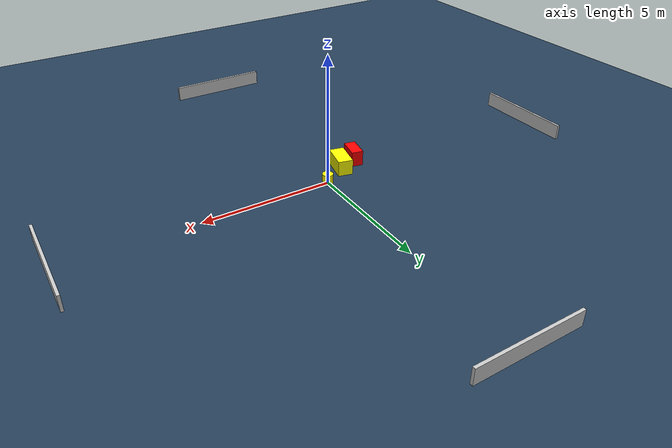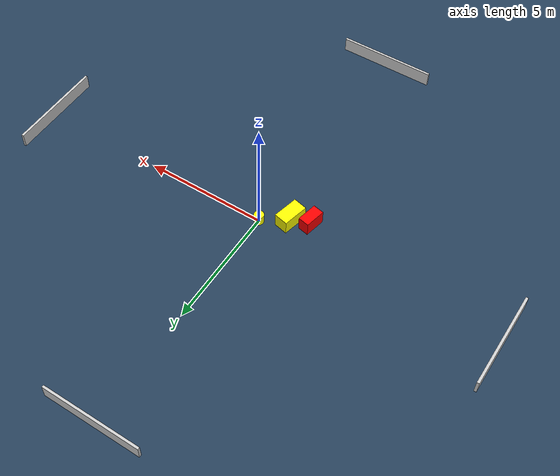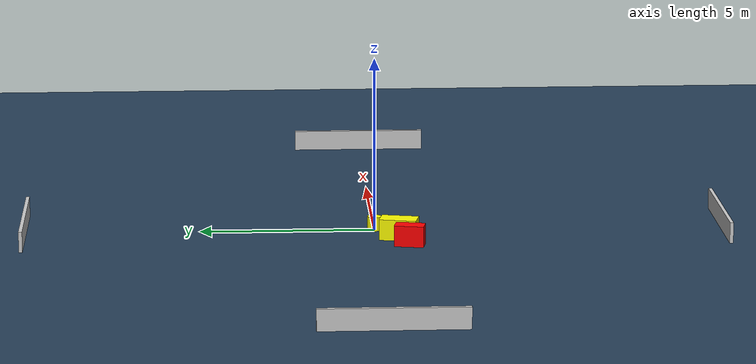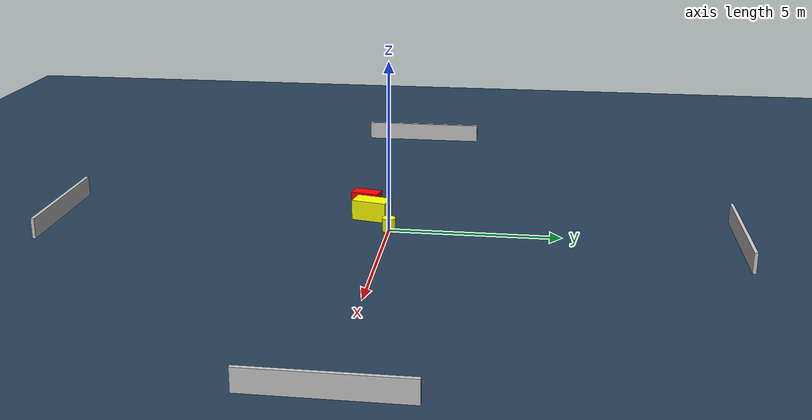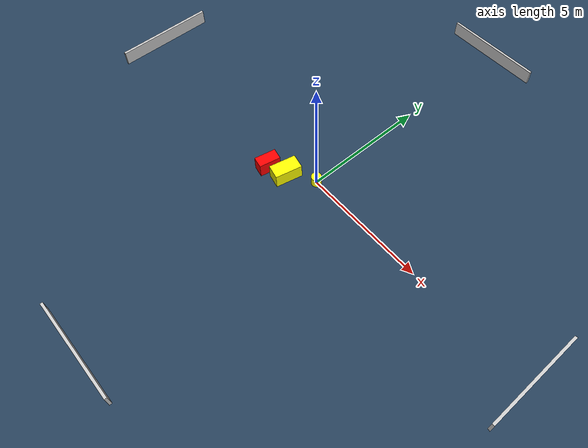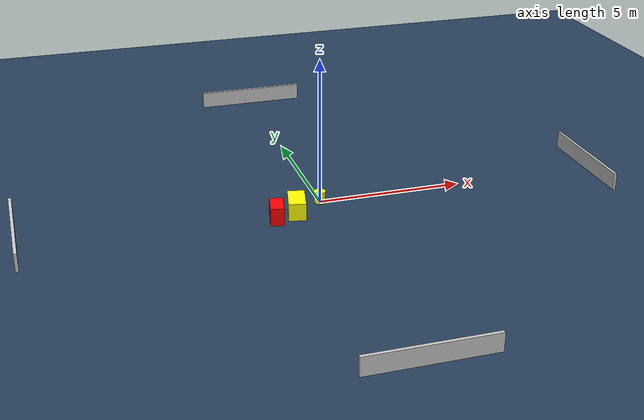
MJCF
<?xml version="1.0" ?>
<mujoco model="generated_environment">
  <option timestep="0.01" integrator="RK4" cone="elliptic"/>
  <default>
    <geom density="1"/>
  </default>
  <asset>
    <texture builtin="gradient" height="3072" name="skybox" rgb1="0.3 0.5 0.7" rgb2="0 0 0" type="skybox" width="512"/>
    <texture builtin="checker" height="300" name="groundplane" rgb1="0.2 0.3 0.4" rgb2="0.1 0.2 0.3" type="2d" width="300"/>
    <material name="groundplane" reflectance="0.2" texrepeat="5 5" texture="groundplane"/>
  </asset>
  <worldbody>
    <light dir="0 0 -1" directional="true" pos="0 0 1.5"/>
    <geom condim="3" friction="0.5 0.005 0.001" material="groundplane" name="floor" pos="0 0 0" size="0 0 0.05" type="plane"/>
    <body name="walls">
      <geom name="wall_1" condim="4" pos="-10.0 0.0 0.3" rgba="0.800000011920929 0.800000011920929 0.800000011920929 1.0" size="0.05 2.0 0.3" type="box"/>
      <geom name="wall_2" condim="4" pos="10.0 0.0 0.3" rgba="0.800000011920929 0.800000011920929 0.800000011920929 1.0" size="0.05 2.0 0.3" type="box"/>
      <geom name="wall_3" condim="4" pos="0.0 -10.0 0.3" rgba="0.800000011920929 0.800000011920929 0.800000011920929 1.0" size="2.0 0.05 0.3" type="box"/>
      <geom name="wall_4" condim="4" pos="0.0 10.0 0.3" rgba="0.800000011920929 0.800000011920929 0.800000011920929 1.0" size="2.0 0.05 0.3" type="box"/>
    </body>
    <body name="robot">
      <joint name="joint_x" type="slide" pos="0 0 0" axis="1 0 0"/>
      <joint name="joint_y" type="slide" pos="0 0 0" axis="0 1 0"/>
      <geom name="robot" type="cylinder" pos="0.0 0.0 0.2" size="0.2 0.2 0.0" mass="5.0" friction="1.0 0.005 0.0001" condim="4" rgba="1.0 1.0 0.0 1.0"/>
    </body>
    <body name="obstacle_1_movable">
      <geom name="obstacle_1_movable" condim="4" pos="-0.9935309184285508 -0.650253453857098 0.3" euler="0 0 77.44351431844139" friction="0.0 0.005 0.001" rgba="1.0 1.0 0.0 1.0" size="0.5289501592857637 0.28824253039270686 0.3" type="box" mass="0.1"/>
      <joint type="free"/>
    </body>
    <body name="obstacle_2_static">
      <geom name="obstacle_2_static" condim="4" pos="-1.7361213153473667 -0.9129951725482461 0.3" euler="0 0 258.55359338059446" friction="0.0 0.005 0.001" rgba="1.0 0.0 0.0 1.0" size="0.4207640788647846 0.2271862106332716 0.3" type="box"/>
    </body>
  </worldbody>
  <actuator>
    <motor name="actuator_x" joint="joint_x" gear="1" ctrlrange="-1 1"/>
    <motor name="actuator_y" joint="joint_y" gear="1" ctrlrange="-1 1"/>
  </actuator>
</mujoco>
